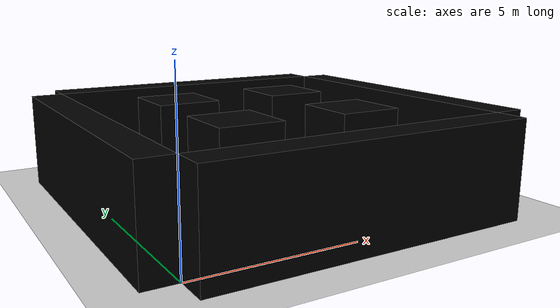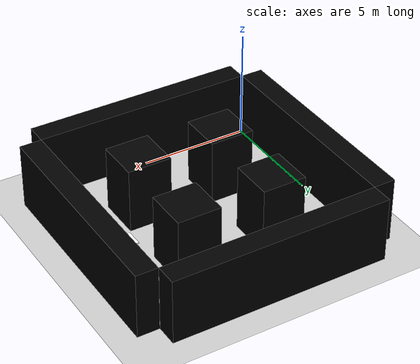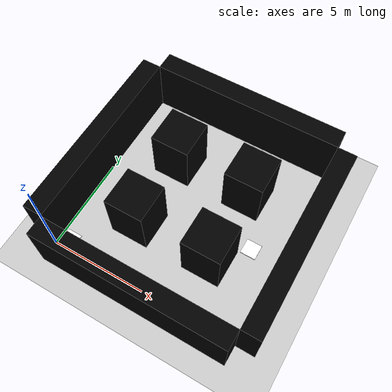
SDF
<sdf version="1.7">
 <world name="default">
  <light name="sun" type="directional">
   <pose>0 0 10 0 -0 0</pose>
   <diffuse>0.8 0.8 0.8 1</diffuse>
   <specular>0.2 0.2 0.2 1</specular>
   <attenuation>
    <range>1000</range>
    <constant>0.9</constant>
    <linear>0.01</linear>
    <quadratic>0.001</quadratic>
   </attenuation>
   <direction>-0.5 0.1 -0.9</direction>
   <spot><inner_angle>0</inner_angle><outer_angle>0</outer_angle><falloff>0</falloff></spot>
  </light>
  <model name="ground_plane">
   <static>1</static>
   <link name="link">
    <collision name="collision">
     <geometry><plane><normal>0 0 1</normal><size>100 100</size></plane></geometry>
     <surface><friction><ode><mu>100</mu><mu2>50</mu2></ode></friction></surface>
    </collision>
    <visual name="visual">
     <cast_shadows>0</cast_shadows>
     <geometry><plane><normal>0 0 1</normal><size>100 100</size></plane></geometry>
     <material>
      <script><uri>file://media/materials/scripts/gazebo.material</uri><name>Gazebo/Grey</name></script>
     </material>
    </visual>
   </link>
  </model>
  <gravity>0 0 -9.8</gravity>
  <magnetic_field>6e-06 2.3e-05 -4.2e-05</magnetic_field>
  <atmosphere type="adiabatic"/>
  <physics type="ode">
   <max_step_size>0.001</max_step_size>
   <real_time_factor>1</real_time_factor>
   <real_time_update_rate>1000</real_time_update_rate>
  </physics>
  <scene><ambient>0.4 0.4 0.4 1</ambient><background>0.7 0.7 0.7 1</background><shadows>1</shadows></scene>
  <spherical_coordinates>
   <surface_model>EARTH_WGS84</surface_model>
   <latitude_deg>0</latitude_deg>
   <longitude_deg>0</longitude_deg>
   <elevation>0</elevation>
   <heading_deg>0</heading_deg>
  </spherical_coordinates>
  <model name="brick_box_10X1XB">
   <link name="chassis">
    <pose>0 0 1.5 0 -0 0</pose>
    <inertial>
     <mass>1</mass>
     <inertia><ixx>1</ixx><ixy>0</ixy><ixz>0</ixz><iyy>1</iyy><iyz>0</iyz><izz>1</izz></inertia>
    </inertial>
    <visual name="visual">
     <geometry>
      <mesh><uri>model://brick_box_3x1x3/meshes/simple_box.dae</uri><scale>10 1 3</scale></mesh>
     </geometry>
     <material>
      <script>
       <uri>model://brick_box_3x1x3/materials/scripts</uri>
       <uri>model://brick_box_3x1x3/materials/textures</uri>
       <name>BrickBox/Diffuse</name>
      </script>
      <shader type="vertex"><normal_map>__default__</normal_map></shader>
      <ambient>0 0 0 1</ambient>
      <diffuse>0 0 0 1</diffuse>
      <specular>0 0 0 1</specular>
      <emissive>0 0 0 1</emissive>
      <lighting>1</lighting>
     </material>
    </visual>
    <collision name="collision">
     <geometry><box><size>10 1 3</size></box></geometry>
     <surface>
      <friction>
       <ode><mu>1</mu><mu2>1</mu2><fdir1>0 0 0</fdir1><slip1>0</slip1><slip2>0</slip2></ode>
       <torsional>
        <coefficient>1</coefficient>
        <patch_radius>0</patch_radius>
        <surface_radius>0</surface_radius>
        <use_patch_radius>1</use_patch_radius>
        <ode><slip>0</slip></ode>
       </torsional>
      </friction>
      <bounce><restitution_coefficient>0</restitution_coefficient><threshold>1e+06</threshold></bounce>
      <contact>
       <collide_without_contact>0</collide_without_contact>
       <collide_without_contact_bitmask>1</collide_without_contact_bitmask>
       <collide_bitmask>1</collide_bitmask>
       <ode>
        <soft_cfm>0</soft_cfm>
        <soft_erp>0.2</soft_erp>
        <kp>1e+13</kp>
        <kd>1</kd>
        <max_vel>0.01</max_vel>
        <min_depth>0</min_depth>
       </ode>
       <bullet>
        <split_impulse>1</split_impulse>
        <split_impulse_penetration_threshold>-0.01</split_impulse_penetration_threshold>
        <soft_cfm>0</soft_cfm>
        <soft_erp>0.2</soft_erp>
        <kp>1e+13</kp>
        <kd>1</kd>
       </bullet>
      </contact>
     </surface>
    </collision>
   </link>
   <static>1</static>
   <pose>5 -0.5 0 0 -0 0</pose>
  </model>
  <model name="brick_box_10X1XB_0">
   <link name="chassis">
    <pose>0 0 1.5 0 -0 0</pose>
    <inertial>
     <mass>1</mass>
     <inertia><ixx>1</ixx><ixy>0</ixy><ixz>0</ixz><iyy>1</iyy><iyz>0</iyz><izz>1</izz></inertia>
    </inertial>
    <visual name="visual">
     <geometry>
      <mesh><uri>model://brick_box_3x1x3/meshes/simple_box.dae</uri><scale>10 1 3</scale></mesh>
     </geometry>
     <material>
      <script>
       <uri>model://brick_box_3x1x3/materials/scripts</uri>
       <uri>model://brick_box_3x1x3/materials/textures</uri>
       <name>BrickBox/Diffuse</name>
      </script>
      <shader type="vertex"><normal_map>__default__</normal_map></shader>
      <ambient>0 0 0 1</ambient>
      <diffuse>0 0 0 1</diffuse>
      <specular>0 0 0 1</specular>
      <emissive>0 0 0 1</emissive>
      <lighting>1</lighting>
     </material>
    </visual>
    <collision name="collision">
     <geometry><box><size>10 1 3</size></box></geometry>
     <surface>
      <friction>
       <ode><mu>1</mu><mu2>1</mu2><fdir1>0 0 0</fdir1><slip1>0</slip1><slip2>0</slip2></ode>
       <torsional>
        <coefficient>1</coefficient>
        <patch_radius>0</patch_radius>
        <surface_radius>0</surface_radius>
        <use_patch_radius>1</use_patch_radius>
        <ode><slip>0</slip></ode>
       </torsional>
      </friction>
      <bounce><restitution_coefficient>0</restitution_coefficient><threshold>1e+06</threshold></bounce>
      <contact>
       <collide_without_contact>0</collide_without_contact>
       <collide_without_contact_bitmask>1</collide_without_contact_bitmask>
       <collide_bitmask>1</collide_bitmask>
       <ode>
        <soft_cfm>0</soft_cfm>
        <soft_erp>0.2</soft_erp>
        <kp>1e+13</kp>
        <kd>1</kd>
        <max_vel>0.01</max_vel>
        <min_depth>0</min_depth>
       </ode>
       <bullet>
        <split_impulse>1</split_impulse>
        <split_impulse_penetration_threshold>-0.01</split_impulse_penetration_threshold>
        <soft_cfm>0</soft_cfm>
        <soft_erp>0.2</soft_erp>
        <kp>1e+13</kp>
        <kd>1</kd>
       </bullet>
      </contact>
     </surface>
    </collision>
   </link>
   <static>1</static>
   <pose>5 10.5 0 0 -0 0</pose>
  </model>
  <model name="brick_box_10X1XB_1">
   <link name="chassis">
    <pose>0 0 1.5 0 -0 0</pose>
    <inertial>
     <mass>1</mass>
     <inertia><ixx>1</ixx><ixy>0</ixy><ixz>0</ixz><iyy>1</iyy><iyz>0</iyz><izz>1</izz></inertia>
    </inertial>
    <visual name="visual">
     <geometry>
      <mesh><uri>model://brick_box_3x1x3/meshes/simple_box.dae</uri><scale>10 1 3</scale></mesh>
     </geometry>
     <material>
      <script>
       <uri>model://brick_box_3x1x3/materials/scripts</uri>
       <uri>model://brick_box_3x1x3/materials/textures</uri>
       <name>BrickBox/Diffuse</name>
      </script>
      <shader type="vertex"><normal_map>__default__</normal_map></shader>
      <ambient>0 0 0 1</ambient>
      <diffuse>0 0 0 1</diffuse>
      <specular>0 0 0 1</specular>
      <emissive>0 0 0 1</emissive>
      <lighting>1</lighting>
     </material>
    </visual>
    <collision name="collision">
     <geometry><box><size>10 1 3</size></box></geometry>
     <surface>
      <friction>
       <ode><mu>1</mu><mu2>1</mu2><fdir1>0 0 0</fdir1><slip1>0</slip1><slip2>0</slip2></ode>
       <torsional>
        <coefficient>1</coefficient>
        <patch_radius>0</patch_radius>
        <surface_radius>0</surface_radius>
        <use_patch_radius>1</use_patch_radius>
        <ode><slip>0</slip></ode>
       </torsional>
      </friction>
      <bounce><restitution_coefficient>0</restitution_coefficient><threshold>1e+06</threshold></bounce>
      <contact>
       <collide_without_contact>0</collide_without_contact>
       <collide_without_contact_bitmask>1</collide_without_contact_bitmask>
       <collide_bitmask>1</collide_bitmask>
       <ode>
        <soft_cfm>0</soft_cfm>
        <soft_erp>0.2</soft_erp>
        <kp>1e+13</kp>
        <kd>1</kd>
        <max_vel>0.01</max_vel>
        <min_depth>0</min_depth>
       </ode>
       <bullet>
        <split_impulse>1</split_impulse>
        <split_impulse_penetration_threshold>-0.01</split_impulse_penetration_threshold>
        <soft_cfm>0</soft_cfm>
        <soft_erp>0.2</soft_erp>
        <kp>1e+13</kp>
        <kd>1</kd>
       </bullet>
      </contact>
     </surface>
    </collision>
   </link>
   <static>1</static>
   <pose>-0.5 5 0 0 -0 1.57</pose>
  </model>
  <model name="brick_box_10X1XB_2">
   <link name="chassis">
    <pose>0 0 1.5 0 -0 0</pose>
    <inertial>
     <mass>1</mass>
     <inertia><ixx>1</ixx><ixy>0</ixy><ixz>0</ixz><iyy>1</iyy><iyz>0</iyz><izz>1</izz></inertia>
    </inertial>
    <visual name="visual">
     <geometry>
      <mesh><uri>model://brick_box_3x1x3/meshes/simple_box.dae</uri><scale>10 1 3</scale></mesh>
     </geometry>
     <material>
      <script>
       <uri>model://brick_box_3x1x3/materials/scripts</uri>
       <uri>model://brick_box_3x1x3/materials/textures</uri>
       <name>BrickBox/Diffuse</name>
      </script>
      <shader type="vertex"><normal_map>__default__</normal_map></shader>
      <ambient>0 0 0 1</ambient>
      <diffuse>0 0 0 1</diffuse>
      <specular>0 0 0 1</specular>
      <emissive>0 0 0 1</emissive>
      <lighting>1</lighting>
     </material>
    </visual>
    <collision name="collision">
     <geometry><box><size>10 1 3</size></box></geometry>
     <surface>
      <friction>
       <ode><mu>1</mu><mu2>1</mu2><fdir1>0 0 0</fdir1><slip1>0</slip1><slip2>0</slip2></ode>
       <torsional>
        <coefficient>1</coefficient>
        <patch_radius>0</patch_radius>
        <surface_radius>0</surface_radius>
        <use_patch_radius>1</use_patch_radius>
        <ode><slip>0</slip></ode>
       </torsional>
      </friction>
      <bounce><restitution_coefficient>0</restitution_coefficient><threshold>1e+06</threshold></bounce>
      <contact>
       <collide_without_contact>0</collide_without_contact>
       <collide_without_contact_bitmask>1</collide_without_contact_bitmask>
       <collide_bitmask>1</collide_bitmask>
       <ode>
        <soft_cfm>0</soft_cfm>
        <soft_erp>0.2</soft_erp>
        <kp>1e+13</kp>
        <kd>1</kd>
        <max_vel>0.01</max_vel>
        <min_depth>0</min_depth>
       </ode>
       <bullet>
        <split_impulse>1</split_impulse>
        <split_impulse_penetration_threshold>-0.01</split_impulse_penetration_threshold>
        <soft_cfm>0</soft_cfm>
        <soft_erp>0.2</soft_erp>
        <kp>1e+13</kp>
        <kd>1</kd>
       </bullet>
      </contact>
     </surface>
    </collision>
   </link>
   <static>1</static>
   <pose>10.5 5 0 0 -0 1.57</pose>
  </model>
  <model name="brick_box_2x2_black">
   <link name="chassis">
    <pose>0 0 1.5 0 -0 0</pose>
    <inertial>
     <mass>1</mass>
     <inertia><ixx>1</ixx><ixy>0</ixy><ixz>0</ixz><iyy>1</iyy><iyz>0</iyz><izz>1</izz></inertia>
    </inertial>
    <visual name="visual">
     <geometry><mesh><uri>model://brick_box_3x1x3/meshes/simple_box.dae</uri><scale>2 2 3</scale></mesh></geometry>
     <material>
      <script>
       <uri>model://brick_box_3x1x3/materials/scripts</uri>
       <uri>model://brick_box_3x1x3/materials/textures</uri>
       <name>BrickBox/Diffuse</name>
      </script>
      <shader type="vertex"><normal_map>__default__</normal_map></shader>
      <ambient>0 0 0 1</ambient>
      <diffuse>0 0 0 1</diffuse>
      <specular>0 0 0 1</specular>
      <emissive>0 0 0 1</emissive>
      <lighting>1</lighting>
     </material>
    </visual>
    <collision name="collision">
     <geometry><box><size>2 2 3</size></box></geometry>
     <surface>
      <friction>
       <ode><mu>1</mu><mu2>1</mu2><fdir1>0 0 0</fdir1><slip1>0</slip1><slip2>0</slip2></ode>
       <torsional>
        <coefficient>1</coefficient>
        <patch_radius>0</patch_radius>
        <surface_radius>0</surface_radius>
        <use_patch_radius>1</use_patch_radius>
        <ode><slip>0</slip></ode>
       </torsional>
      </friction>
      <bounce><restitution_coefficient>0</restitution_coefficient><threshold>1e+06</threshold></bounce>
      <contact>
       <collide_without_contact>0</collide_without_contact>
       <collide_without_contact_bitmask>1</collide_without_contact_bitmask>
       <collide_bitmask>1</collide_bitmask>
       <ode>
        <soft_cfm>0</soft_cfm>
        <soft_erp>0.2</soft_erp>
        <kp>1e+13</kp>
        <kd>1</kd>
        <max_vel>0.01</max_vel>
        <min_depth>0</min_depth>
       </ode>
       <bullet>
        <split_impulse>1</split_impulse>
        <split_impulse_penetration_threshold>-0.01</split_impulse_penetration_threshold>
        <soft_cfm>0</soft_cfm>
        <soft_erp>0.2</soft_erp>
        <kp>1e+13</kp>
        <kd>1</kd>
       </bullet>
      </contact>
     </surface>
    </collision>
   </link>
   <static>1</static>
   <pose>3 3 0 0 -0 0</pose>
  </model>
  <model name="brick_box_2x2_black_0">
   <link name="chassis">
    <pose>0 0 1.5 0 -0 0</pose>
    <inertial>
     <mass>1</mass>
     <inertia><ixx>1</ixx><ixy>0</ixy><ixz>0</ixz><iyy>1</iyy><iyz>0</iyz><izz>1</izz></inertia>
    </inertial>
    <visual name="visual">
     <geometry><mesh><uri>model://brick_box_3x1x3/meshes/simple_box.dae</uri><scale>2 2 3</scale></mesh></geometry>
     <material>
      <script>
       <uri>model://brick_box_3x1x3/materials/scripts</uri>
       <uri>model://brick_box_3x1x3/materials/textures</uri>
       <name>BrickBox/Diffuse</name>
      </script>
      <shader type="vertex"><normal_map>__default__</normal_map></shader>
      <ambient>0 0 0 1</ambient>
      <diffuse>0 0 0 1</diffuse>
      <specular>0 0 0 1</specular>
      <emissive>0 0 0 1</emissive>
      <lighting>1</lighting>
     </material>
    </visual>
    <collision name="collision">
     <geometry><box><size>2 2 3</size></box></geometry>
     <surface>
      <friction>
       <ode><mu>1</mu><mu2>1</mu2><fdir1>0 0 0</fdir1><slip1>0</slip1><slip2>0</slip2></ode>
       <torsional>
        <coefficient>1</coefficient>
        <patch_radius>0</patch_radius>
        <surface_radius>0</surface_radius>
        <use_patch_radius>1</use_patch_radius>
        <ode><slip>0</slip></ode>
       </torsional>
      </friction>
      <bounce><restitution_coefficient>0</restitution_coefficient><threshold>1e+06</threshold></bounce>
      <contact>
       <collide_without_contact>0</collide_without_contact>
       <collide_without_contact_bitmask>1</collide_without_contact_bitmask>
       <collide_bitmask>1</collide_bitmask>
       <ode>
        <soft_cfm>0</soft_cfm>
        <soft_erp>0.2</soft_erp>
        <kp>1e+13</kp>
        <kd>1</kd>
        <max_vel>0.01</max_vel>
        <min_depth>0</min_depth>
       </ode>
       <bullet>
        <split_impulse>1</split_impulse>
        <split_impulse_penetration_threshold>-0.01</split_impulse_penetration_threshold>
        <soft_cfm>0</soft_cfm>
        <soft_erp>0.2</soft_erp>
        <kp>1e+13</kp>
        <kd>1</kd>
       </bullet>
      </contact>
     </surface>
    </collision>
   </link>
   <static>1</static>
   <pose>3 7 0 0 -0 0</pose>
  </model>
  <model name="brick_box_2x2_black_1">
   <link name="chassis">
    <pose>0 0 1.5 0 -0 0</pose>
    <inertial>
     <mass>1</mass>
     <inertia><ixx>1</ixx><ixy>0</ixy><ixz>0</ixz><iyy>1</iyy><iyz>0</iyz><izz>1</izz></inertia>
    </inertial>
    <visual name="visual">
     <geometry><mesh><uri>model://brick_box_3x1x3/meshes/simple_box.dae</uri><scale>2 2 3</scale></mesh></geometry>
     <material>
      <script>
       <uri>model://brick_box_3x1x3/materials/scripts</uri>
       <uri>model://brick_box_3x1x3/materials/textures</uri>
       <name>BrickBox/Diffuse</name>
      </script>
      <shader type="vertex"><normal_map>__default__</normal_map></shader>
      <ambient>0 0 0 1</ambient>
      <diffuse>0 0 0 1</diffuse>
      <specular>0 0 0 1</specular>
      <emissive>0 0 0 1</emissive>
      <lighting>1</lighting>
     </material>
    </visual>
    <collision name="collision">
     <geometry><box><size>2 2 3</size></box></geometry>
     <surface>
      <friction>
       <ode><mu>1</mu><mu2>1</mu2><fdir1>0 0 0</fdir1><slip1>0</slip1><slip2>0</slip2></ode>
       <torsional>
        <coefficient>1</coefficient>
        <patch_radius>0</patch_radius>
        <surface_radius>0</surface_radius>
        <use_patch_radius>1</use_patch_radius>
        <ode><slip>0</slip></ode>
       </torsional>
      </friction>
      <bounce><restitution_coefficient>0</restitution_coefficient><threshold>1e+06</threshold></bounce>
      <contact>
       <collide_without_contact>0</collide_without_contact>
       <collide_without_contact_bitmask>1</collide_without_contact_bitmask>
       <collide_bitmask>1</collide_bitmask>
       <ode>
        <soft_cfm>0</soft_cfm>
        <soft_erp>0.2</soft_erp>
        <kp>1e+13</kp>
        <kd>1</kd>
        <max_vel>0.01</max_vel>
        <min_depth>0</min_depth>
       </ode>
       <bullet>
        <split_impulse>1</split_impulse>
        <split_impulse_penetration_threshold>-0.01</split_impulse_penetration_threshold>
        <soft_cfm>0</soft_cfm>
        <soft_erp>0.2</soft_erp>
        <kp>1e+13</kp>
        <kd>1</kd>
       </bullet>
      </contact>
     </surface>
    </collision>
   </link>
   <static>1</static>
   <pose>7 7 0 0 -0 0</pose>
  </model>
  <model name="brick_box_2x2_black_2">
   <link name="chassis">
    <pose>0 0 1.5 0 -0 0</pose>
    <inertial>
     <mass>1</mass>
     <inertia><ixx>1</ixx><ixy>0</ixy><ixz>0</ixz><iyy>1</iyy><iyz>0</iyz><izz>1</izz></inertia>
    </inertial>
    <visual name="visual">
     <geometry><mesh><uri>model://brick_box_3x1x3/meshes/simple_box.dae</uri><scale>2 2 3</scale></mesh></geometry>
     <material>
      <script>
       <uri>model://brick_box_3x1x3/materials/scripts</uri>
       <uri>model://brick_box_3x1x3/materials/textures</uri>
       <name>BrickBox/Diffuse</name>
      </script>
      <shader type="vertex"><normal_map>__default__</normal_map></shader>
      <ambient>0 0 0 1</ambient>
      <diffuse>0 0 0 1</diffuse>
      <specular>0 0 0 1</specular>
      <emissive>0 0 0 1</emissive>
      <lighting>1</lighting>
     </material>
    </visual>
    <collision name="collision">
     <geometry><box><size>2 2 3</size></box></geometry>
     <surface>
      <friction>
       <ode><mu>1</mu><mu2>1</mu2><fdir1>0 0 0</fdir1><slip1>0</slip1><slip2>0</slip2></ode>
       <torsional>
        <coefficient>1</coefficient>
        <patch_radius>0</patch_radius>
        <surface_radius>0</surface_radius>
        <use_patch_radius>1</use_patch_radius>
        <ode><slip>0</slip></ode>
       </torsional>
      </friction>
      <bounce><restitution_coefficient>0</restitution_coefficient><threshold>1e+06</threshold></bounce>
      <contact>
       <collide_without_contact>0</collide_without_contact>
       <collide_without_contact_bitmask>1</collide_without_contact_bitmask>
       <collide_bitmask>1</collide_bitmask>
       <ode>
        <soft_cfm>0</soft_cfm>
        <soft_erp>0.2</soft_erp>
        <kp>1e+13</kp>
        <kd>1</kd>
        <max_vel>0.01</max_vel>
        <min_depth>0</min_depth>
       </ode>
       <bullet>
        <split_impulse>1</split_impulse>
        <split_impulse_penetration_threshold>-0.01</split_impulse_penetration_threshold>
        <soft_cfm>0</soft_cfm>
        <soft_erp>0.2</soft_erp>
        <kp>1e+13</kp>
        <kd>1</kd>
       </bullet>
      </contact>
     </surface>
    </collision>
   </link>
   <static>1</static>
   <pose>7 3 0 0 -0 0</pose>
  </model>
  <model name="number1_short">
   <link name="link">
    <inertial>
     <mass>1</mass>
     <inertia><ixx>1</ixx><ixy>0</ixy><ixz>0</ixz><iyy>1</iyy><iyz>0</iyz><izz>1</izz></inertia>
    </inertial>
    <visual name="visual">
     <geometry><mesh><uri>model://number1/meshes/number.dae</uri><scale>1 1 0.1</scale></mesh></geometry>
     <material>
      <script>
       <uri>model://number1/materials/scripts</uri>
       <uri>model://number1/materials/textures</uri>
       <name>Number/One</name>
      </script>
      <shader type="vertex"><normal_map>__default__</normal_map></shader>
      <ambient>1 1 1 1</ambient>
      <diffuse>1 1 1 1</diffuse>
      <specular>0 0 0 1</specular>
      <emissive>0 0 0 1</emissive>
     </material>
    </visual>
   </link>
   <static>1</static>
   <pose>8.5 4.5 0 0 -0 3.14</pose>
  </model>
  <model name="number2_short">
   <link name="link">
    <inertial>
     <mass>1</mass>
     <inertia><ixx>1</ixx><ixy>0</ixy><ixz>0</ixz><iyy>1</iyy><iyz>0</iyz><izz>1</izz></inertia>
    </inertial>
    <visual name="visual">
     <geometry><mesh><uri>model://number1/meshes/number.dae</uri><scale>1 1 0.1</scale></mesh></geometry>
     <material>
      <script>
       <uri>model://number2/materials/scripts</uri>
       <uri>model://number2/materials/textures</uri>
       <name>Number/Two</name>
      </script>
      <shader type="vertex"><normal_map>__default__</normal_map></shader>
      <ambient>1 1 1 1</ambient>
      <diffuse>1 1 1 1</diffuse>
      <specular>0 0 0 1</specular>
      <emissive>0 0 0 1</emissive>
     </material>
    </visual>
   </link>
   <static>1</static>
   <pose>0.5 0.5 0 0 -0 3.14</pose>
  </model>
 </world>
</sdf>
